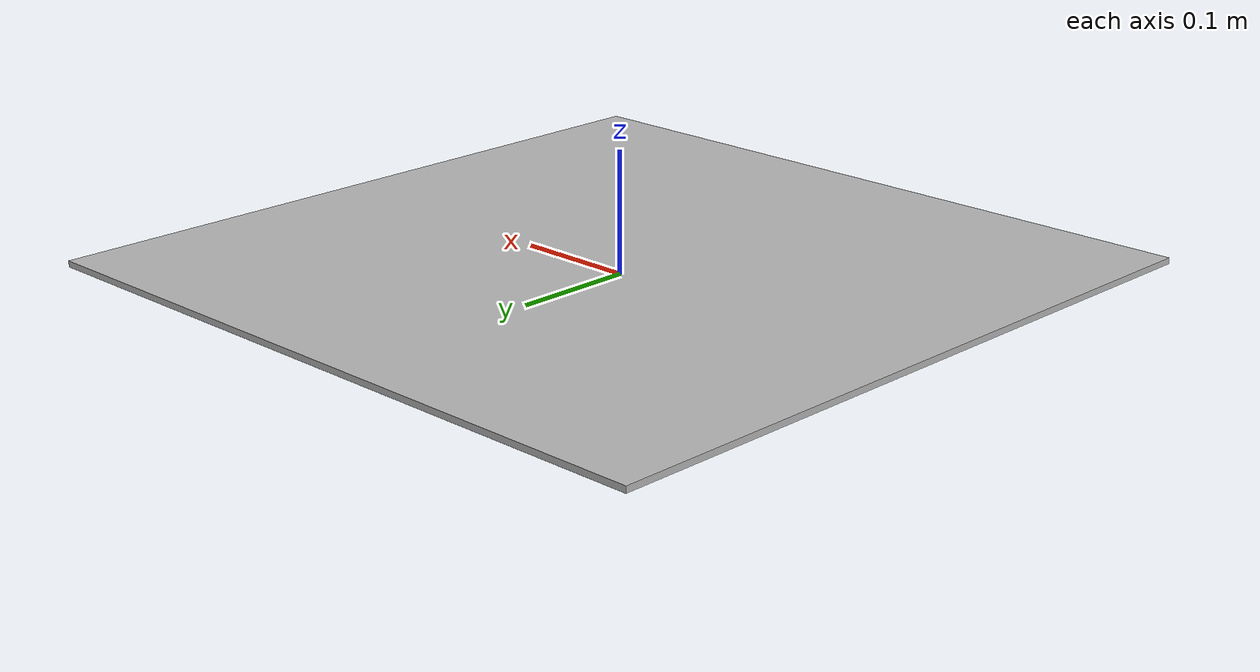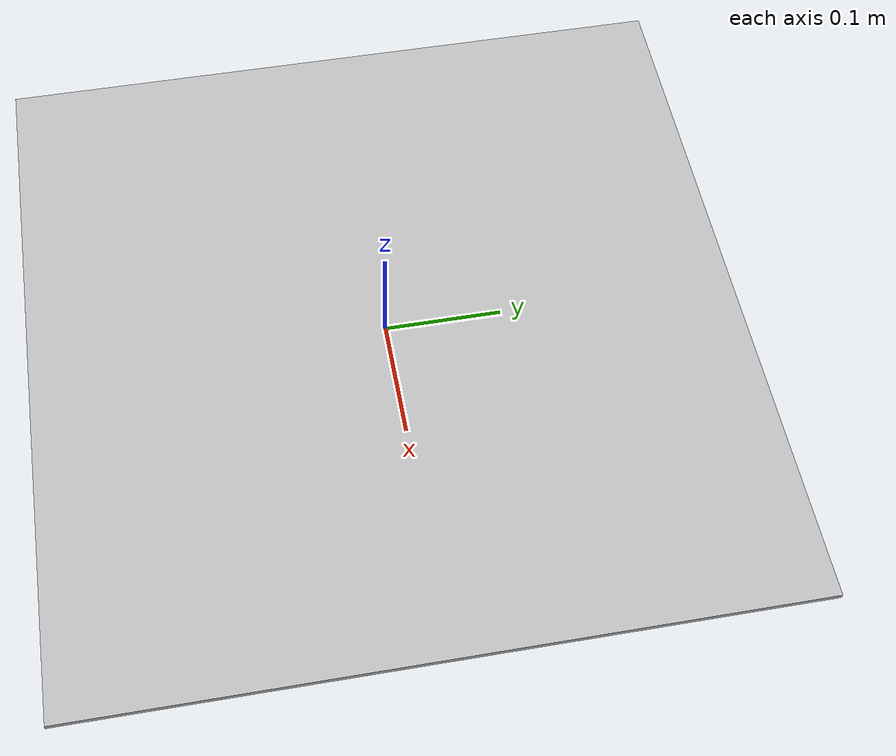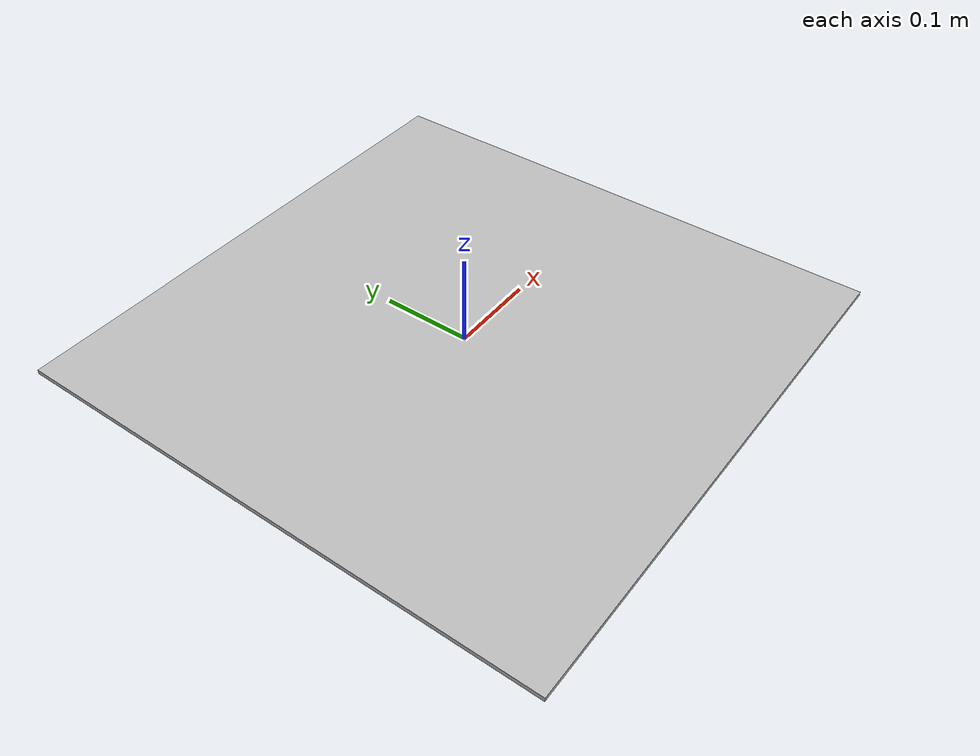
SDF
<?xml version='1.0'?>
<sdf version='1.4'>
  <model name="apriltag_board_v2_4">
    <link name='link'>
      <pose>0 0 0.01 0 0 1.57</pose>
      <inertial>
        <mass>1.00</mass>
        <inertia>
          <ixx>0.58</ixx>
          <ixy>0</ixy>
          <ixz>0</ixz>
          <iyy>0.58</iyy>
          <iyz>0</iyz>
          <izz>0.19</izz>
        </inertia>
      </inertial>
      <collision name='collision'>
        <geometry>
                <box>
                  <size>0.6 0.6 .005</size>
                </box>
        </geometry>
      </collision>

      <visual name='visual'>
        <geometry>
                <box>
                  <size>0.6 0.6 .005</size>
                </box>
        </geometry>

        <material>
          <script>
            <uri>model://apriltag_board_v2_4/materials/scripts</uri>
            <uri>model://apriltag_board_v2_4/materials/textures</uri>
            <name>Mark/apriltag_board_v2_4</name>
          </script>
        </material>
      </visual>
    </link>
  </model>
</sdf>
